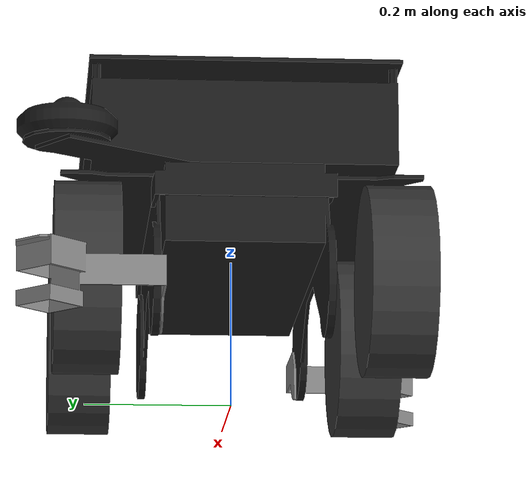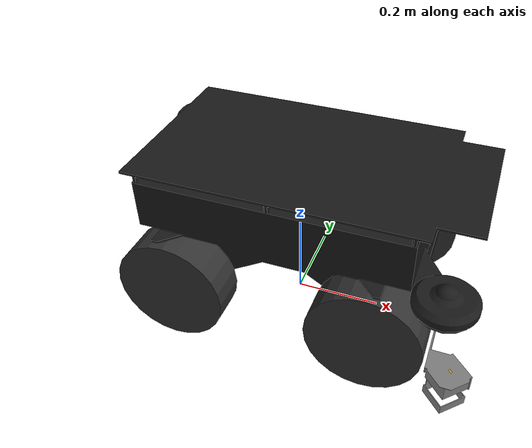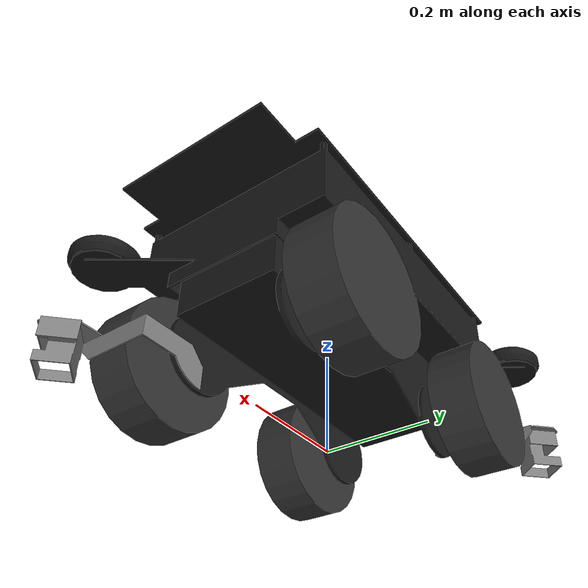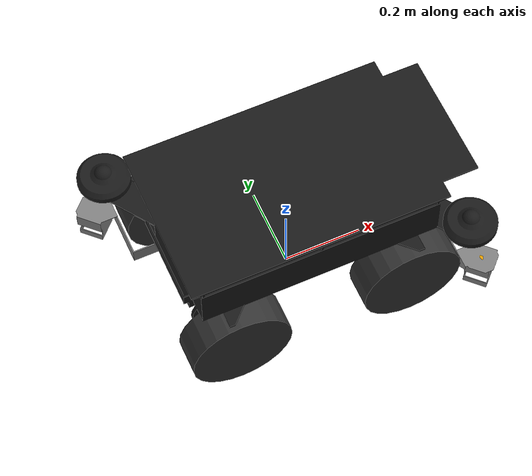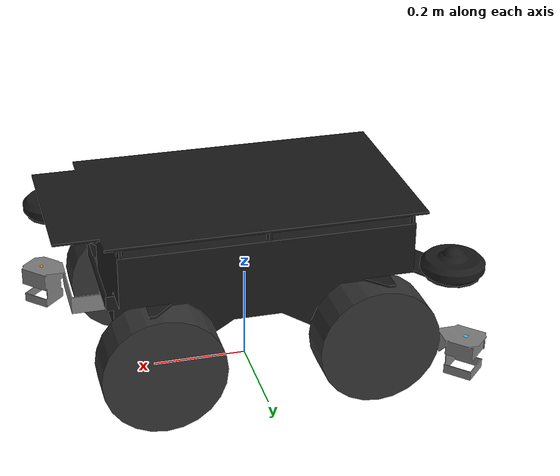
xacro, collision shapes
<?xml version="1.0"?>
<robot name="summit_xl" xmlns:xacro="http://www.ros.org/wiki/xacro">

	<!-- Imported elements -->

	<!-- First we import all posible elements defined in the urdf.xacro files. All these elements are defined as macro:xacros -->

	<!-- Import summit XL base elements -->
	<xacro:include filename="$(find summit_xl_description)/urdf/bases/summit_xl_hls_base.urdf.xacro" />

	<!-- Import summit XL wheels -->
	<xacro:include filename="$(find summit_xl_description)/urdf/wheels/omni_wheel.urdf.xacro" />

	<!-- Import strucutres, holders -->
	<xacro:include filename="$(find summit_xl_description)/urdf/structures/structure_hokuyo.urdf.xacro" />

	<!-- Import all available sensors -->
	<xacro:include filename="$(find robotnik_sensors)/urdf/all_sensors.urdf.xacro" />

	<!-- Global parameters -->

	<xacro:property name="PI" value="3.1415926535897931"/>

	<!-- Wheel parameters -->
	<xacro:property name="wheel_offset_x" value="0.2225" />    <!-- x,y,z in translation from base_link to the center of the wheel -->
	<xacro:property name="wheel_offset_y" value="0.2045" />
	<xacro:property name="wheel_offset_z" value="0.0" />

	<!-- Flag to select the high or low quality model -->
	<xacro:property name="hq" value="true" />

	<!-- Robots Elements -->

	<!-- Here we create the robot elements using the xacro:macros imported at the beggining of this file -->

	<!-- Summit XL base -->
    <xacro:summit_xl_hls_base name="summit_xl" publish_bf="true" hq="${hq}"/>

    <!-- Gazebo ros control pluggins -->
    <xacro:ros_control/>

    <!-- Gazebo omni steering plugin -->
    <xacro:omni_steering/>

    <!-- HOLDERS, STRUCTURES -->
    <xacro:structure name="structure_hokuyo_front" parent="base_link">
       <origin xyz="0.2225 -0.105 0.001" rpy="0 0 0"/>
    </xacro:structure>

    <xacro:structure name="structure_hokuyo_rear" parent="base_link">
       <origin xyz="-0.2225 0.105 0.001" rpy="0 0 3.1416"/>
    </xacro:structure>

	<!-- WHEELS -->
	<xacro:omni_wheel name="front_right" parent="base_link" reflect="false" hq="true">
		<origin xyz="${wheel_offset_x} -${wheel_offset_y} ${wheel_offset_z}" rpy="0 0 0"/>
	</xacro:omni_wheel>

	<xacro:omni_wheel name="front_left" parent="base_link" reflect="true" hq="true">
		<origin xyz="${wheel_offset_x} ${wheel_offset_y} ${wheel_offset_z}" rpy="0 0 0"/>
	</xacro:omni_wheel>

	<xacro:omni_wheel name="back_left" parent="base_link" reflect="false" hq="true">
		<origin xyz="-${wheel_offset_x} ${wheel_offset_y} ${wheel_offset_z}" rpy="0 0 0"/>
	</xacro:omni_wheel>

	<xacro:omni_wheel name="back_right" parent="base_link" reflect="true" hq="true">
		<origin xyz="-${wheel_offset_x} -${wheel_offset_y} ${wheel_offset_z}" rpy="0 0 0"/>
	</xacro:omni_wheel>

	<!-- SENSORS -->
	<xacro:sensor_hokuyo_ust10lx name="hokuyo_front" parent="base_link">
		<origin xyz="0.403 -0.256 -0.050" rpy="3.1416 0 -0.7854"/>
	</xacro:sensor_hokuyo_ust10lx>

	<xacro:sensor_hokuyo_ust10lx name="hokuyo_rear" parent="base_link">
		<origin xyz="-0.403 0.256 -0.050" rpy="3.1416 0 2.3562"/>
	</xacro:sensor_hokuyo_ust10lx>

	<xacro:sensor_axis_m5013 name="camera_front" parent="base_link">
		<origin xyz="0.370 -0.234 0.148" rpy="0 0 0"/>
	</xacro:sensor_axis_m5013>

	<xacro:sensor_axis_m5013 name="camera_rear" parent="base_link">
		<origin xyz="-0.370 0.234 0.148" rpy="0 0 3.1416"/>
	</xacro:sensor_axis_m5013>

	<xacro:sensor_imu name="imu" parent="base_link">
		<origin xyz="-0.18 0.0 0.170" rpy="0 0 0"/>
	</xacro:sensor_imu>

</robot>

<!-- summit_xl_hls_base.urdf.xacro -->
<robot name="summit_xl" xmlns:xacro="http://www.ros.org/wiki/xacro">

  <xacro:include filename="$(find summit_xl_description)/urdf/bases/summit_xl_base.gazebo.xacro" />

  <xacro:macro name="summit_xl_hls_base" params="name publish_bf hq">

  <!-- Robot mechanical and motor parameters -->
  <xacro:property name="PI" value="3.1415926535897931"/>
  <!-- xacro:property name="wheel_width" value="0.175" / -->

  <!-- BASE FOOTPRINT -->
  <xacro:if value="${publish_bf}">
    <link name="base_footprint">
      <visual>
          <origin xyz="0 0 0" rpy="0 0 0" />
          <geometry>
             <box size="0.001 0.001 0.001" />
          </geometry>
      </visual>
    </link>

    <joint name="base_footprint_joint" type="fixed">
      <origin xyz="0 0 ${wheel_radius}" rpy="0 0 0" /> <!-- ${wheel_radius} property must be defined inside wheel description -->
      <parent link="base_footprint"/>
      <child link="base_link" />
    </joint>
  </xacro:if>

  <!-- BASE_LINK -->
  <link name="base_link">
    <inertial>
      <mass value="25.0" />
      <origin xyz="0 0 0" />
      <inertia  ixx="1.391" ixy="0.004"  ixz="0.0"  iyy="6.853"  iyz="0.0"  izz="6.125" />
    </inertial>
    <visual>
       <origin xyz="0 0 0" rpy="0 0 0" />
       <xacro:if value="${hq}">
       <geometry>
	     <mesh filename="package://summit_xl_description/meshes/bases/hls/summit_xl_hls.stl"/>
       </geometry>
       </xacro:if>
       <xacro:unless value="${hq}">
       <geometry>
	     <mesh filename="package://summit_xl_description/meshes/bases/hls/summit_xl_hls.dae"/>
       </geometry>
       </xacro:unless>
       <material name="darkgrey">
         <color rgba="0.1 0.1 0.1 1"/>
       </material>
    </visual>
    <collision>
       <origin xyz="0 0 0" rpy="0 0 0 " />
       <geometry>
         <mesh filename="package://summit_xl_description/meshes/bases/hls/summit_xl_hls.dae"/>
       </geometry>
    </collision>
  </link>

  </xacro:macro>
</robot>

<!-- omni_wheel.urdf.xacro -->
<robot name="wheel" xmlns:xacro="http://www.ros.org/wiki/xacro">

  <xacro:property name="M_PI" value="3.1415926535897931" />
  <!-- Wheels -->
  <xacro:property name="wheel_radius" value="0.127" />
  <xacro:property name="wheel_height" value="0.087" />
  <xacro:property name="wheel_mass" value="6.5" /> <!-- in kg-->

  <xacro:macro name="cylinder_inertia" params="m r h">
    <inertia  ixx="${m*(3*r*r+h*h)/12}" ixy = "0" ixz = "0"
              iyy="${m*(3*r*r+h*h)/12}" iyz = "0"
              izz="${m*r*r/2}" />
  </xacro:macro>

  <xacro:macro name="omni_wheel" params="name parent *origin reflect hq">

    <joint name="joint_${name}_wheel" type="continuous">
      <parent link="${parent}"/>
      <child link="${name}_wheel"/>
      <xacro:insert_block name="origin" />
      <axis xyz="0 1 0" rpy="0 0 0" />
      <limit effort="100" velocity="100"/>
      <joint_properties damping="0.0" friction="0.0"/>
    </joint>

    <link name="${name}_wheel">
      <visual>
        <xacro:if value="${hq}">
          <origin xyz="0 0 0" rpy="0 0 0" />
          <xacro:if value="${reflect}">
            <geometry>
              <mesh filename="package://summit_xl_description/meshes/wheels/omni_wheel_1.dae" />
            </geometry>
          </xacro:if>
          <xacro:unless value="${reflect}">
            <geometry>
              <mesh filename="package://summit_xl_description/meshes/wheels/omni_wheel_2.dae" />
            </geometry>
		  s</xacro:unless>
        </xacro:if>

        <xacro:unless value="${hq}">
          <origin xyz="0 0 0" rpy="0 0 0" />
          <geometry>
            <sphere radius="${wheel_radius}" />
          </geometry>
        </xacro:unless>

        <material name="darkgrey">
           <color rgba="0.2 0.2 0.2 1"/>
        </material>
      </visual>

      <collision>
				<origin xyz="0 0 0" rpy="${PI/2} 0 0" />
        <geometry>
					<cylinder length="${wheel_height}" radius="${wheel_radius}" />
        </geometry>
      </collision>

      <inertial>
        <mass value="${wheel_mass}" />
        <origin xyz="0 0 0" />
        <cylinder_inertia  m="${wheel_mass}" r="${wheel_radius}" h="${wheel_height}" />
      </inertial>
    </link>

    <!-- Transmission is important to link the joints and the controller (see summit_xl_control/config/summit_xl_control.yaml)-->
    <transmission name="${name}_wheel_joint_trans">
      <type>transmission_interface/SimpleTransmission</type>
      <joint name="joint_${name}_wheel" >
         <hardwareInterface>EffortJointInterface</hardwareInterface>
      </joint>
      <actuator name="${name}_wheel_joint_motor">
         <mechanicalReduction>1</mechanicalReduction>
      </actuator>
    </transmission>

    <gazebo reference="${name}_wheel">
		<mu1 value="1.0"/>
		<mu2 value="1.0"/>
		<kp value="10000000.0" />
		<kd value="1.0" />
		<fdir1 value="1 0 0"/>
        <turnGravityOff>false</turnGravityOff>
    </gazebo>

  </xacro:macro>
</robot>

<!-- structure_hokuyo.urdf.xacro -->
<robot name="structure" xmlns:xacro="http://ros.org/wiki/xacro">

  <xacro:macro name="structure" params="name parent *origin">

	  <joint name="${name}_joint" type="fixed">
	    <axis xyz="0 1 0"/>
	    <xacro:insert_block name="origin"/>
	    <parent link="${parent}"/>
	    <child link="${name}_link"/>
	  </joint>

	  <link name="${name}_link">
	    <inertial>
	      <mass value="0.001"/>
	      <origin rpy="0 0 0" xyz="0 0 0"/>
	      <inertia ixx="0.0001" ixy="0" ixz="0" iyy="0.000001" iyz="0" izz="0.0001"/>
	    </inertial>
	    <visual>
	      <origin rpy="0 0 0" xyz="0 0 0"/>
	      <material name="alu_color">
           <color rgba="0.5 0.5 0.5 1"/>
        </material>
	      <geometry>
	        <mesh filename="package://summit_xl_description/meshes/structures/structure_hokuyo.stl"/>
	      </geometry>
	    </visual>
	    <collision>
	      <origin rpy="0 0 0" xyz="0 0 0"/>
	      <geometry>
	        <mesh filename="package://summit_xl_description/meshes/structures/structure_hokuyo.dae"/>
	      </geometry>
	    </collision>
	  </link>

	  <gazebo reference="${name}_link">
	    <material>Gazebo/White</material>
	    <gravity>true</gravity>
	  </gazebo>

  </xacro:macro>

</robot>

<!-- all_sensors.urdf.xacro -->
<robot name="all_sensors" xmlns:xacro="http://ros.org/wiki/xacro">

	<!-- This file unifies all sensors that can be used on simulation, defined as xacro:macros -->

  <!-- Axis p5512 -->
  <xacro:include filename="$(find robotnik_sensors)/urdf/axis.urdf.xacro" />

  <!-- Axis m5013 -->
  <xacro:include filename="$(find robotnik_sensors)/urdf/axis_m5013.urdf.xacro" />

  <!-- Fotonic -->
  <xacro:include filename="$(find robotnik_sensors)/urdf/fotonic.urdf.xacro" />

  <!-- GPS -->
  <xacro:include filename="$(find robotnik_sensors)/urdf/gps.urdf.xacro" />

  <!-- Hokuyo urg04lx -->
  <xacro:include filename="$(find robotnik_sensors)/urdf/hokuyo_urg04lx.urdf.xacro" />

  <!-- Hokuyo utm30lx -->
  <xacro:include filename="$(find robotnik_sensors)/urdf/hokuyo_utm30lx.urdf.xacro" />

  <!-- Hokuyo ust10lx -->
  <xacro:include filename="$(find robotnik_sensors)/urdf/hokuyo_ust10lx.urdf.xacro" />

  <!-- Imu -->
  <xacro:include filename="$(find robotnik_sensors)/urdf/imu.urdf.xacro" />

  <!-- Kinect -->
  <xacro:include filename="$(find robotnik_sensors)/urdf/kinect.urdf.xacro" />

  <!-- Asus Xtion PRO -->
  <xacro:include filename="$(find robotnik_sensors)/urdf/asus_xtion_pro.urdf.xacro" />

  <!-- Hokuyo 3d -->
  <xacro:include filename="$(find robotnik_sensors)/urdf/hokuyo3d.urdf.xacro" />

  <!-- Sick s3000 -->
  <xacro:include filename="$(find robotnik_sensors)/urdf/sick_s3000.urdf.xacro" />

  <!-- KinectV2 -->
  <xacro:include filename="$(find robotnik_sensors)/urdf/kinectv2.urdf.xacro" />

</robot>

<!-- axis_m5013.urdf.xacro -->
<robot name="sensor_axis_m5013" xmlns:xacro="http://ros.org/wiki/xacro">

  <xacro:property name="ptz_joint_effort_limit" value="100.0" />
  <xacro:property name="ptz_joint_velocity_limit" value="100.0"/>
  <xacro:property name="ptz_joint_friction" value="0.1" />
  <xacro:property name="ptz_joint_damping" value="0.1" />
  <xacro:property name="ptz_mechanical_reduction" value="1.0" />

  <xacro:macro name="sensor_axis_m5013" params="name parent *origin">

 	  <joint name="${name}_joint" type="fixed">
	      <axis xyz="0 1 0" />
		  <xacro:insert_block name="origin"/>
	      <parent link="${parent}"/>
	      <child link="${name}_link"/>
	  </joint>

    <link name="${name}_link">
      <inertial>
				<origin xyz="0 0 0" rpy="0 0 0"/>
        <mass value="0.1" />
        <origin xyz="0 0 0" rpy="0 0 0" />
        <inertia ixx="0.1" ixy="0" ixz="0" iyy="0.1" iyz="0" izz="0.1" />
      </inertial>
      <visual>
	      <origin xyz="0 0 0" rpy="0 0 0"/> <!-- to center the axis model -->
	      <material name="axis_color">
           <color rgba="0.1 0.1 0.1 1"/>
        </material>
	      <geometry>
			 <mesh filename= "package://robotnik_sensors/meshes/axis_m5013.dae" scale="1.0 1.0 1.0"/>
	      </geometry>

	    </visual>
	    <collision>
	      <origin xyz="0.0 0.0 0" rpy="0 0 0"/>
	      <geometry>
	        <mesh filename= "package://robotnik_sensors/meshes/axis_m5013.stl" scale="1.0 1.0 1.0"/>
	      </geometry>
	    </collision>
    </link>

	  <joint name="joint_${name}_pan" type="continuous">
	     <axis xyz="0 0 -1" />
	     <origin xyz="0.0 0.0 0.03"/>
	     <parent link="${name}_link"/>
	     <child link="${name}_pan_link"/>
	     <limit effort="${ptz_joint_effort_limit}" velocity="${ptz_joint_velocity_limit}" lower="-3.1416" upper="3.1416"/>
	     <joint_properties damping="${ptz_joint_damping}" friction="{ptz_joint_friction}"/>
	  </joint>

	  <link name="${name}_pan_link">
	     <inertial>
	       <mass value="0.1" />
	       <origin xyz="0 0 0" rpy="0 0 0" />
	       <inertia ixx="0.1" ixy="0" ixz="0" iyy="0.1" iyz="0" izz="0.1" />
	    </inertial>
	  </link>

	  <transmission name="${name}_pan_trans">
		 <type>transmission_interface/SimpleTransmission</type>
	     <joint name="joint_${name}_pan">
			<hardwareInterface>EffortJointInterface</hardwareInterface>
		 </joint>
	     <actuator name="pan_motor">
			   <hardwareInterface>EffortJointInterface</hardwareInterface>
	       <mechanicalReduction>${ptz_mechanical_reduction}</mechanicalReduction>
	     </actuator>
	  </transmission>

	  <joint name="joint_${name}_tilt" type="continuous">
	     <axis xyz="0 -1 0" />
	     <origin xyz="0.0 0.0 0.0"/>
	     <parent link="${name}_pan_link"/>
	     <child link="${name}_tilt_link"/>
	     <limit effort="${ptz_joint_effort_limit}" velocity="${ptz_joint_velocity_limit}" lower="-1.5708" upper="1.5708"/>
	     <joint_properties damping="${ptz_joint_damping}" friction="{ptz_joint_friction}"/>
	  </joint>

	  <link name="${name}_tilt_link">
	     <inertial>
	       <mass value="0.1" />
	       <origin xyz="0 0 0" rpy="0 0 0" />
	       <inertia ixx="0.1" ixy="0" ixz="0" iyy="0.1" iyz="0" izz="0.1" />
	    </inertial>
	  </link>

	  <transmission name="${name}_tilt_trans">
		 <type>transmission_interface/SimpleTransmission</type>
	     <joint name="joint_${name}_tilt">
			 <hardwareInterface>EffortJointInterface</hardwareInterface>
		 </joint>
	     <actuator name="tilt_motor">
			<hardwareInterface>EffortJointInterface</hardwareInterface>
			<mechanicalReduction>${ptz_mechanical_reduction}</mechanicalReduction>
	     </actuator>
	  </transmission>

	  <!-- Optical frame -->

	  <joint name="${name}_depth_optical_joint" type="fixed">
		  <origin xyz="0 0 0" rpy="${-M_PI/2} 0 ${-M_PI/2}" />
		  <parent link="${name}_tilt_link"/>
		  <child link="${name}_depth_optical_frame" />
	  </joint>
	  <link name="${name}_depth_optical_frame">
	    <inertial>
	      <mass value="0.001" />
	      <origin xyz="0 0 0" />
	      <inertia ixx="0.0001" ixy="0.0" ixz="0.0"
					       iyy="0.0001" iyz="0.0"
					       izz="0.0001" />
	    </inertial>
	  </link>

    <gazebo reference="${name}_link">
      <material>Gazebo/FlatBlack</material>
    </gazebo>

    <!-- Axis sensor for simulation -->
    <sensor_axis_m5013_gazebo/>

  </xacro:macro>

	<xacro:macro name="sensor_axis_m5013_gazebo">

		<gazebo reference="${name}_tilt_link">
			<sensor type="camera" name="camera1">
				<update_rate>30.0</update_rate>
				<camera name="head">
					<horizontal_fov>${60.0*M_PI/180.0}</horizontal_fov>
					<image>
						<format>R8G8B8</format>
						<width>640</width>
						<height>480</height>
					</image>
					<clip>
						<near>0.05</near>
						<far>8.0</far>
					</clip>
				</camera>
				<plugin name="camera_controller" filename="libgazebo_ros_camera.so">
					<alwaysOn>true</alwaysOn>
					<updateRate>0.0</updateRate>
					<cameraName>${name}</cameraName>
					<imageTopicName>image_raw</imageTopicName>
					<cameraInfoTopicName>camera_info</cameraInfoTopicName>
					<frameName>${name}_depth_optical_frame</frameName>
					<hackBaseline>0.07</hackBaseline>
					<distortionK1>0.0</distortionK1>
					<distortionK2>0.0</distortionK2>
					<distortionK3>0.0</distortionK3>
					<distortionT1>0.0</distortionT1>
					<distortionT2>0.0</distortionT2>
				</plugin>
			</sensor>
		</gazebo>

	</xacro:macro>

</robot>

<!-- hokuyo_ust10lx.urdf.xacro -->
<robot name="sensor_hokuyo_ust10lx" xmlns:xacro="http://ros.org/wiki/xacro">

  <xacro:macro name="sensor_hokuyo_ust10lx" params="name parent *origin min_angle:=2.3562 max_angle:=-2.3562">

    <joint name="${name}_laser_joint" type="fixed">
      <xacro:insert_block name="origin" />
      <parent link="${parent}"/>
      <child link="${name}_laser_link"/>
    </joint>

    <link name="${name}_laser_link">
      <collision>
        <origin xyz="0 0 -0.05" rpy="0 0 0"/>
        <geometry>
          <box size="0.010 0.010 0.010"/>
        </geometry>
      </collision>

      <visual>
        <origin xyz="0 0 -0.05" rpy="0 0 0"/>
        <geometry>
            <mesh filename="package://robotnik_sensors/meshes/hokuyo_ust_10lx.dae"/>
        </geometry>
      </visual>

      <inertial>
        <mass value="1e-5" />
        <origin xyz="0 0 0" rpy="0 0 0"/>
        <inertia ixx="1e-6" ixy="0" ixz="0" iyy="1e-6" iyz="0" izz="1e-6" />
      </inertial>
    </link>

    <!-- Hokuyo sensor for simulation -->
    <sensor_hokuyo_ust_gazebo/>

  </xacro:macro>

  <xacro:macro name="sensor_hokuyo_ust_gazebo">
    <gazebo reference="${name}_laser_link">
			<sensor type="ray" name="${name}_sensor">
				<pose>0 0 0 0 0 0</pose>
				<visualize>false</visualize>
				<update_rate>40</update_rate>
				<ray>
					<scan>
						<horizontal>
							<samples>1081</samples>
							<resolution>1</resolution>
							<min_angle>${min_angle}</min_angle>
							<max_angle>${max_angle}</max_angle>
						</horizontal>
					</scan>
					<range>
						<min>0.06</min>
						<max>20.0</max>
						<resolution>0.004359297</resolution>
					</range>
					<noise>
						<type>gaussian</type>
						<mean>0.0</mean>
						<stddev>0.01</stddev>
					</noise>
				</ray>
				<plugin name="gazebo_ros_head_hokuyo_controller" filename="libgazebo_ros_laser.so">
					<topicName>${name}/scan</topicName>
					<frameName>${name}_laser_link</frameName>
				</plugin>
			</sensor>
	</gazebo>
  </xacro:macro>

</robot>

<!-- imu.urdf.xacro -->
<robot name="sensor_imu" xmlns:xacro="http://ros.org/wiki/xacro">

  <xacro:macro name="sensor_imu" params="name parent *origin">

	  <joint name="${name}_joint" type="fixed">
	      <axis xyz="1 0 0"/>
	      <!--origin xyz="0 0 0.2825"/-->
	      <xacro:insert_block name="origin"/>
	      <parent link="${parent}"/>
	      <child link="${name}_link"/>
	  </joint>

	  <link name="${name}_link">
	      <inertial>
	        <mass value="0.001"/>
	        <origin rpy="0 0 0" xyz="0 0 0"/>
	        <inertia ixx="0.0001" ixy="0" ixz="0" iyy="0.000001" iyz="0" izz="0.0001"/>
	      </inertial>
	      <visual>
	        <origin rpy="0 0 0" xyz="0 0 0"/>
	        <geometry>
	          <box size="0.001 0.001 0.001"/>
	        </geometry>
	      </visual>
	      <collision>
	        <origin rpy="0 0 0" xyz="0 0 0"/>
	        <geometry>
	          <box size=".001 .001 .001"/>
	        </geometry>
	      </collision>
	  </link>

	  <gazebo>
	    <plugin name="ros_imu" filename="libgazebo_ros_imu.so">
	       <topicName>imu_data</topicName>
				 <bodyName>imu_link</bodyName>
				 <serviceName>imu_service</serviceName>
	       <gaussianNoise>0.005</gaussianNoise>
	    </plugin>
	  </gazebo>

  </xacro:macro>

</robot>

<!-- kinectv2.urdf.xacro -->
<robot name="sensor_kinectv2" xmlns:xacro="http://ros.org/wiki/xacro">

  <xacro:property name="M_PI" value="3.1415926535897931" />
	<xacro:property name="cam_px" value="-0.087" />
	<xacro:property name="cam_py" value="-0.0125" />
	<xacro:property name="cam_pz" value="0.2870" />
	<xacro:property name="cam_or" value="0" />
	<xacro:property name="cam_op" value="0" />
	<xacro:property name="cam_oy" value="0" />

  <xacro:macro name="sensor_kinectv2" params="name parent *origin">

    <joint name="${name}_rgb_joint" type="fixed">
      <xacro:insert_block name="origin" />
      <parent link="${parent}"/>
      <child link="${name}_rgb_frame" />
    </joint>
    <link name="${name}_rgb_frame">
      <inertial>
        <mass value="0.001" />
        <origin xyz="0 0 0" />
        <inertia ixx="0.0001" ixy="0.0" ixz="0.0"
                 iyy="0.0001" iyz="0.0"
                 izz="0.0001" />
      </inertial>
    </link>

    <joint name="${name}_rgb_optical_joint" type="fixed">
      <origin xyz="0 0 0" rpy="${-M_PI/2} 0 ${-M_PI/2}" />
      <parent link="${name}_rgb_frame" />
      <child link="${name}_rgb_optical_frame" />
    </joint>
    <link name="${name}_rgb_optical_frame">
      <inertial>
        <mass value="0.001" />
        <origin xyz="0 0 0" />
        <inertia ixx="0.0001" ixy="0.0" ixz="0.0"
                 iyy="0.0001" iyz="0.0"
                 izz="0.0001" />
      </inertial>
    </link>

  <joint name="${name}_joint" type="fixed">
    <origin xyz="-0.031 ${-cam_py} -0.016" rpy="0 0 0"/>
    <parent link="${name}_rgb_frame"/>
    <child link="${name}_link"/>
  </joint>
    <link name="${name}_link">
    <visual>
     <origin xyz="0 0 0" rpy="0 0 ${M_PI/2}"/>
      <geometry>
       <mesh filename="package://robotnik_sensors/meshes/kinectv2.dae"/>
      </geometry>
    </visual>
	  <collision>
      <origin xyz="0.0 0.0 0.0" rpy="0 0 0"/>
	    <geometry>
	      <box size="0.07271 0.27794 0.073"/>
	    </geometry>
	  </collision>
    <inertial>
      <mass value="0.001" />
      <origin xyz="0 0 0" />
      <inertia ixx="0.0001" ixy="0.0" ixz="0.0"
               iyy="0.0001" iyz="0.0"
               izz="0.0001" />
    </inertial>
  </link>

	<joint name="${name}_depth_joint" type="fixed">
	  <origin xyz="0 ${2 * -cam_py} 0" rpy="0 0 0" />
	  <parent link="${name}_rgb_frame" />
	  <child link="${name}_depth_frame" />
	</joint>
	<link name="${name}_depth_frame">
    <inertial>
      <mass value="0.001" />
      <origin xyz="0 0 0" />
      <inertia ixx="0.0001" ixy="0.0" ixz="0.0"
               iyy="0.0001" iyz="0.0"
               izz="0.0001" />
    </inertial>
	</link>
	<joint name="${name}_depth_optical_joint" type="fixed">
	  <origin xyz="0 0 0" rpy="${-M_PI/2} 0 ${-M_PI/2}" />
	  <parent link="${name}_depth_frame" />
	  <child link="${name}_depth_optical_frame" />
	</joint>
	<link name="${name}_depth_optical_frame">
    <inertial>
      <mass value="0.001" />
      <origin xyz="0 0 0" />
      <inertia ixx="0.0001" ixy="0.0" ixz="0.0"
               iyy="0.0001" iyz="0.0"
               izz="0.0001" />
    </inertial>
	</link>

		<!-- Kinect sensor for simulation -->
	  <sensor_kinectv2_gazebo/>

  </xacro:macro>

  <xacro:macro name="sensor_kinectv2_gazebo">

    <gazebo reference="${name}_link">
      <sensor type="depth" name="cam">
        <always_on>true</always_on>
        <update_rate>20.0</update_rate>
        <camera>
          <horizontal_fov>${60.0*M_PI/180.0}</horizontal_fov>
          <image>
            <format>R8G8B8</format>
            <width>640</width>
            <height>480</height>
          </image>
          <clip>
            <near>0.05</near>
            <far>8.0</far>
          </clip>
        </camera>
        <plugin name="kinect_cam_controller" filename="libgazebo_ros_openni_kinect.so">
          <cameraName>${name}</cameraName>
          <alwaysOn>true</alwaysOn>
          <updateRate>10</updateRate>
          <imageTopicName>rgb/image_raw</imageTopicName>
          <depthImageTopicName>depth/image_raw</depthImageTopicName>
          <pointCloudTopicName>depth/points</pointCloudTopicName>
          <cameraInfoTopicName>rgb/camera_info</cameraInfoTopicName>
          <depthImageCameraInfoTopicName>depth/camera_info</depthImageCameraInfoTopicName>
          <frameName>${name}_depth_optical_frame</frameName>
          <baseline>0.1</baseline>
          <distortion_k1>0.0</distortion_k1>
          <distortion_k2>0.0</distortion_k2>
          <distortion_k3>0.0</distortion_k3>
          <distortion_t1>0.0</distortion_t1>
          <distortion_t2>0.0</distortion_t2>
          <pointCloudCutoff>0.4</pointCloudCutoff>
          <pointCloudCutoffMax>5.0</pointCloudCutoffMax>
        </plugin>
      </sensor>
    </gazebo>

  </xacro:macro>

</robot>
